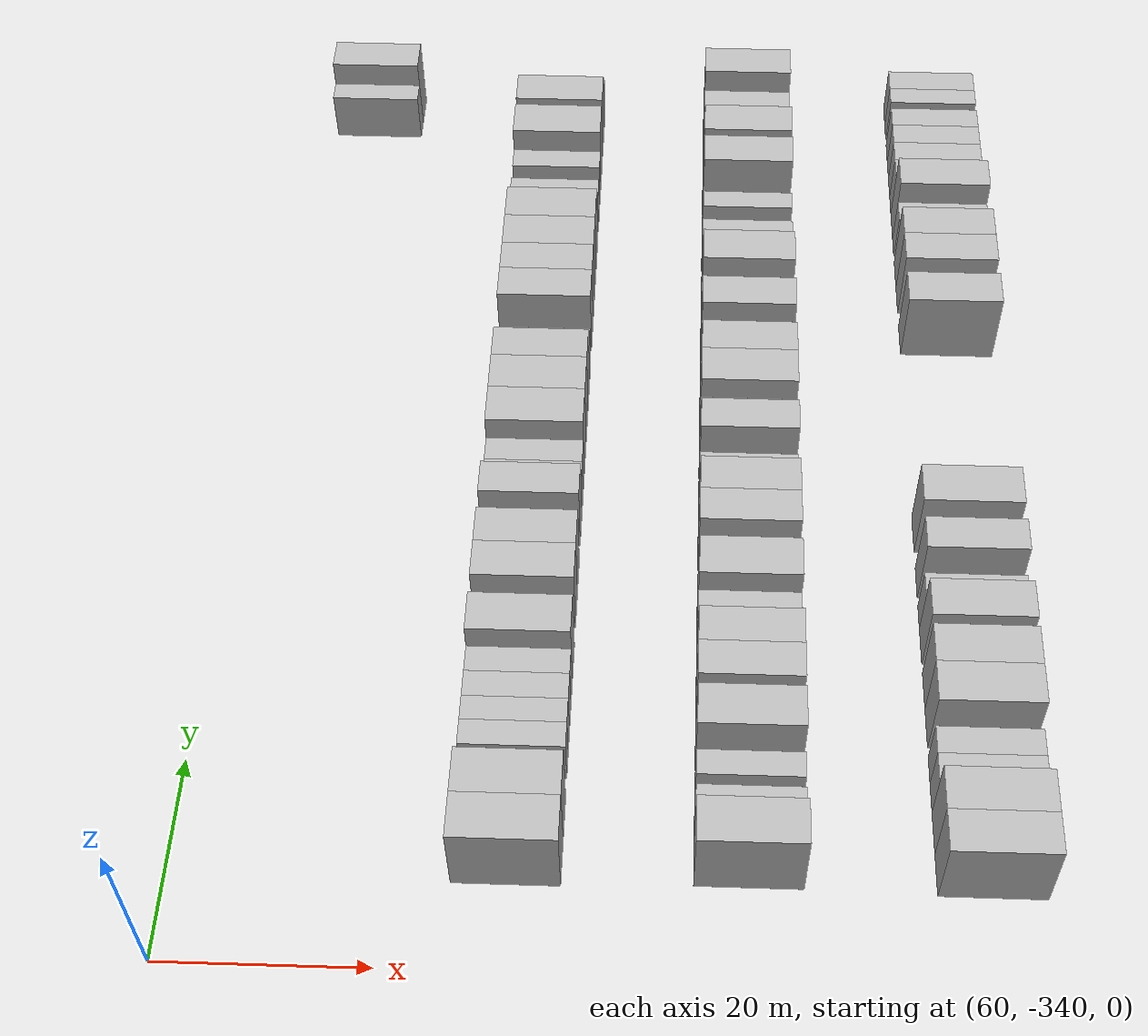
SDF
<sdf version="1.6">
 <world name="default">
  <model name="building_419">
   <static>1</static>
   <pose>69.0000 -233.4032 0 0.000000 0.000000 0.000000</pose>
   <link name="link">
    <pose>0 0 3.00 0 0 0</pose>
    <collision name="collision"><geometry><box><size>10.0000 2.4806 6.0000</size></box></geometry></collision>
    <visual name="visual">
     <cast_shadows>0</cast_shadows>
     <geometry><box><size>10.0000 2.4806 6.0000</size></box></geometry>
     <material>
      <script>
       <uri>model://HANNAS_wall/materials/scripts</uri>
       <uri>model://HANNAS_wall/materials/textures</uri>
       <name>vrc/HANNAS_wall</name>
      </script>
     </material>
    </visual>
   </link>
  </model>
  <model name="building_420">
   <static>1</static>
   <pose>69.0000 -230.1984 0 0.000000 0.000000 0.000000</pose>
   <link name="link">
    <pose>0 0 4.50 0 0 0</pose>
    <collision name="collision"><geometry><box><size>10.0000 3.9290 9.0000</size></box></geometry></collision>
    <visual name="visual">
     <cast_shadows>0</cast_shadows>
     <geometry><box><size>10.0000 3.9290 9.0000</size></box></geometry>
     <material>
      <script>
       <uri>model://HANNAS_wall/materials/scripts</uri>
       <uri>model://HANNAS_wall/materials/textures</uri>
       <name>vrc/HANNAS_wall</name>
      </script>
     </material>
    </visual>
   </link>
  </model>
  <model name="building_581">
   <static>1</static>
   <pose>91.0000 -329.4090 0 0.000000 0.000000 0.000000</pose>
   <link name="link">
    <pose>0 0 4.50 0 0 0</pose>
    <collision name="collision"><geometry><box><size>10.0000 4.4573 9.0000</size></box></geometry></collision>
    <visual name="visual">
     <cast_shadows>0</cast_shadows>
     <geometry><box><size>10.0000 4.4573 9.0000</size></box></geometry>
     <material>
      <script>
       <uri>model://HANNAS_wall/materials/scripts</uri>
       <uri>model://HANNAS_wall/materials/textures</uri>
       <name>vrc/HANNAS_wall</name>
      </script>
     </material>
    </visual>
   </link>
  </model>
  <model name="building_582">
   <static>1</static>
   <pose>91.0000 -324.9564 0 0.000000 0.000000 0.000000</pose>
   <link name="link">
    <pose>0 0 4.50 0 0 0</pose>
    <collision name="collision"><geometry><box><size>10.0000 4.4479 9.0000</size></box></geometry></collision>
    <visual name="visual">
     <cast_shadows>0</cast_shadows>
     <geometry><box><size>10.0000 4.4479 9.0000</size></box></geometry>
     <material>
      <script>
       <uri>model://HANNAS_wall/materials/scripts</uri>
       <uri>model://HANNAS_wall/materials/textures</uri>
       <name>vrc/HANNAS_wall</name>
      </script>
     </material>
    </visual>
   </link>
  </model>
  <model name="building_583">
   <static>1</static>
   <pose>91.0000 -319.4270 0 0.000000 0.000000 0.000000</pose>
   <link name="link">
    <pose>0 0 3.00 0 0 0</pose>
    <collision name="collision"><geometry><box><size>10.0000 2.6109 6.0000</size></box></geometry></collision>
    <visual name="visual">
     <cast_shadows>0</cast_shadows>
     <geometry><box><size>10.0000 2.6109 6.0000</size></box></geometry>
     <material>
      <script>
       <uri>model://HANNAS_wall/materials/scripts</uri>
       <uri>model://HANNAS_wall/materials/textures</uri>
       <name>vrc/HANNAS_wall</name>
      </script>
     </material>
    </visual>
   </link>
  </model>
  <model name="building_584">
   <static>1</static>
   <pose>91.0000 -316.8664 0 0.000000 0.000000 0.000000</pose>
   <link name="link">
    <pose>0 0 3.00 0 0 0</pose>
    <collision name="collision"><geometry><box><size>10.0000 2.5103 6.0000</size></box></geometry></collision>
    <visual name="visual">
     <cast_shadows>0</cast_shadows>
     <geometry><box><size>10.0000 2.5103 6.0000</size></box></geometry>
     <material>
      <script>
       <uri>model://HANNAS_wall/materials/scripts</uri>
       <uri>model://HANNAS_wall/materials/textures</uri>
       <name>vrc/HANNAS_wall</name>
      </script>
     </material>
    </visual>
   </link>
  </model>
  <model name="building_585">
   <static>1</static>
   <pose>91.0000 -314.2574 0 0.000000 0.000000 0.000000</pose>
   <link name="link">
    <pose>0 0 3.00 0 0 0</pose>
    <collision name="collision"><geometry><box><size>10.0000 2.7077 6.0000</size></box></geometry></collision>
    <visual name="visual">
     <cast_shadows>0</cast_shadows>
     <geometry><box><size>10.0000 2.7077 6.0000</size></box></geometry>
     <material>
      <script>
       <uri>model://HANNAS_wall/materials/scripts</uri>
       <uri>model://HANNAS_wall/materials/textures</uri>
       <name>vrc/HANNAS_wall</name>
      </script>
     </material>
    </visual>
   </link>
  </model>
  <model name="building_586">
   <static>1</static>
   <pose>91.0000 -311.5536 0 0.000000 0.000000 0.000000</pose>
   <link name="link">
    <pose>0 0 3.00 0 0 0</pose>
    <collision name="collision"><geometry><box><size>10.0000 2.6998 6.0000</size></box></geometry></collision>
    <visual name="visual">
     <cast_shadows>0</cast_shadows>
     <geometry><box><size>10.0000 2.6998 6.0000</size></box></geometry>
     <material>
      <script>
       <uri>model://HANNAS_wall/materials/scripts</uri>
       <uri>model://HANNAS_wall/materials/textures</uri>
       <name>vrc/HANNAS_wall</name>
      </script>
     </material>
    </visual>
   </link>
  </model>
  <model name="building_587">
   <static>1</static>
   <pose>91.0000 -308.1348 0 0.000000 0.000000 0.000000</pose>
   <link name="link">
    <pose>0 0 4.50 0 0 0</pose>
    <collision name="collision"><geometry><box><size>10.0000 4.1378 9.0000</size></box></geometry></collision>
    <visual name="visual">
     <cast_shadows>0</cast_shadows>
     <geometry><box><size>10.0000 4.1378 9.0000</size></box></geometry>
     <material>
      <script>
       <uri>model://HANNAS_wall/materials/scripts</uri>
       <uri>model://HANNAS_wall/materials/textures</uri>
       <name>vrc/HANNAS_wall</name>
      </script>
     </material>
    </visual>
   </link>
  </model>
  <model name="building_588">
   <static>1</static>
   <pose>91.0000 -302.0686 0 0.000000 0.000000 0.000000</pose>
   <link name="link">
    <pose>0 0 4.50 0 0 0</pose>
    <collision name="collision"><geometry><box><size>10.0000 3.9947 9.0000</size></box></geometry></collision>
    <visual name="visual">
     <cast_shadows>0</cast_shadows>
     <geometry><box><size>10.0000 3.9947 9.0000</size></box></geometry>
     <material>
      <script>
       <uri>model://HANNAS_wall/materials/scripts</uri>
       <uri>model://HANNAS_wall/materials/textures</uri>
       <name>vrc/HANNAS_wall</name>
      </script>
     </material>
    </visual>
   </link>
  </model>
  <model name="building_589">
   <static>1</static>
   <pose>91.0000 -298.0919 0 0.000000 0.000000 0.000000</pose>
   <link name="link">
    <pose>0 0 4.50 0 0 0</pose>
    <collision name="collision"><geometry><box><size>10.0000 3.9587 9.0000</size></box></geometry></collision>
    <visual name="visual">
     <cast_shadows>0</cast_shadows>
     <geometry><box><size>10.0000 3.9587 9.0000</size></box></geometry>
     <material>
      <script>
       <uri>model://HANNAS_wall/materials/scripts</uri>
       <uri>model://HANNAS_wall/materials/textures</uri>
       <name>vrc/HANNAS_wall</name>
      </script>
     </material>
    </visual>
   </link>
  </model>
  <model name="building_590">
   <static>1</static>
   <pose>91.0000 -292.2782 0 0.000000 0.000000 0.000000</pose>
   <link name="link">
    <pose>0 0 4.50 0 0 0</pose>
    <collision name="collision"><geometry><box><size>10.0000 3.6687 9.0000</size></box></geometry></collision>
    <visual name="visual">
     <cast_shadows>0</cast_shadows>
     <geometry><box><size>10.0000 3.6687 9.0000</size></box></geometry>
     <material>
      <script>
       <uri>model://HANNAS_wall/materials/scripts</uri>
       <uri>model://HANNAS_wall/materials/textures</uri>
       <name>vrc/HANNAS_wall</name>
      </script>
     </material>
    </visual>
   </link>
  </model>
  <model name="building_591">
   <static>1</static>
   <pose>91.0000 -289.1451 0 0.000000 0.000000 0.000000</pose>
   <link name="link">
    <pose>0 0 3.00 0 0 0</pose>
    <collision name="collision"><geometry><box><size>10.0000 2.5974 6.0000</size></box></geometry></collision>
    <visual name="visual">
     <cast_shadows>0</cast_shadows>
     <geometry><box><size>10.0000 2.5974 6.0000</size></box></geometry>
     <material>
      <script>
       <uri>model://HANNAS_wall/materials/scripts</uri>
       <uri>model://HANNAS_wall/materials/textures</uri>
       <name>vrc/HANNAS_wall</name>
      </script>
     </material>
    </visual>
   </link>
  </model>
  <model name="building_592">
   <static>1</static>
   <pose>91.0000 -286.4779 0 0.000000 0.000000 0.000000</pose>
   <link name="link">
    <pose>0 0 3.00 0 0 0</pose>
    <collision name="collision"><geometry><box><size>10.0000 2.7371 6.0000</size></box></geometry></collision>
    <visual name="visual">
     <cast_shadows>0</cast_shadows>
     <geometry><box><size>10.0000 2.7371 6.0000</size></box></geometry>
     <material>
      <script>
       <uri>model://HANNAS_wall/materials/scripts</uri>
       <uri>model://HANNAS_wall/materials/textures</uri>
       <name>vrc/HANNAS_wall</name>
      </script>
     </material>
    </visual>
   </link>
  </model>
  <model name="building_593">
   <static>1</static>
   <pose>91.0000 -282.9192 0 0.000000 0.000000 0.000000</pose>
   <link name="link">
    <pose>0 0 4.50 0 0 0</pose>
    <collision name="collision"><geometry><box><size>10.0000 4.3802 9.0000</size></box></geometry></collision>
    <visual name="visual">
     <cast_shadows>0</cast_shadows>
     <geometry><box><size>10.0000 4.3802 9.0000</size></box></geometry>
     <material>
      <script>
       <uri>model://HANNAS_wall/materials/scripts</uri>
       <uri>model://HANNAS_wall/materials/textures</uri>
       <name>vrc/HANNAS_wall</name>
      </script>
     </material>
    </visual>
   </link>
  </model>
  <model name="building_594">
   <static>1</static>
   <pose>91.0000 -278.5781 0 0.000000 0.000000 0.000000</pose>
   <link name="link">
    <pose>0 0 4.50 0 0 0</pose>
    <collision name="collision"><geometry><box><size>10.0000 4.3021 9.0000</size></box></geometry></collision>
    <visual name="visual">
     <cast_shadows>0</cast_shadows>
     <geometry><box><size>10.0000 4.3021 9.0000</size></box></geometry>
     <material>
      <script>
       <uri>model://HANNAS_wall/materials/scripts</uri>
       <uri>model://HANNAS_wall/materials/textures</uri>
       <name>vrc/HANNAS_wall</name>
      </script>
     </material>
    </visual>
   </link>
  </model>
  <model name="building_595">
   <static>1</static>
   <pose>91.0000 -274.5388 0 0.000000 0.000000 0.000000</pose>
   <link name="link">
    <pose>0 0 4.50 0 0 0</pose>
    <collision name="collision"><geometry><box><size>10.0000 3.7765 9.0000</size></box></geometry></collision>
    <visual name="visual">
     <cast_shadows>0</cast_shadows>
     <geometry><box><size>10.0000 3.7765 9.0000</size></box></geometry>
     <material>
      <script>
       <uri>model://HANNAS_wall/materials/scripts</uri>
       <uri>model://HANNAS_wall/materials/textures</uri>
       <name>vrc/HANNAS_wall</name>
      </script>
     </material>
    </visual>
   </link>
  </model>
  <model name="building_596">
   <static>1</static>
   <pose>91.0000 -271.3082 0 0.000000 0.000000 0.000000</pose>
   <link name="link">
    <pose>0 0 3.00 0 0 0</pose>
    <collision name="collision"><geometry><box><size>10.0000 2.6848 6.0000</size></box></geometry></collision>
    <visual name="visual">
     <cast_shadows>0</cast_shadows>
     <geometry><box><size>10.0000 2.6848 6.0000</size></box></geometry>
     <material>
      <script>
       <uri>model://HANNAS_wall/materials/scripts</uri>
       <uri>model://HANNAS_wall/materials/textures</uri>
       <name>vrc/HANNAS_wall</name>
      </script>
     </material>
    </visual>
   </link>
  </model>
  <model name="building_597">
   <static>1</static>
   <pose>91.0000 -266.0117 0 0.000000 0.000000 0.000000</pose>
   <link name="link">
    <pose>0 0 4.50 0 0 0</pose>
    <collision name="collision"><geometry><box><size>10.0000 3.9081 9.0000</size></box></geometry></collision>
    <visual name="visual">
     <cast_shadows>0</cast_shadows>
     <geometry><box><size>10.0000 3.9081 9.0000</size></box></geometry>
     <material>
      <script>
       <uri>model://HANNAS_wall/materials/scripts</uri>
       <uri>model://HANNAS_wall/materials/textures</uri>
       <name>vrc/HANNAS_wall</name>
      </script>
     </material>
    </visual>
   </link>
  </model>
  <model name="building_598">
   <static>1</static>
   <pose>91.0000 -262.1861 0 0.000000 0.000000 0.000000</pose>
   <link name="link">
    <pose>0 0 4.50 0 0 0</pose>
    <collision name="collision"><geometry><box><size>10.0000 3.7432 9.0000</size></box></geometry></collision>
    <visual name="visual">
     <cast_shadows>0</cast_shadows>
     <geometry><box><size>10.0000 3.7432 9.0000</size></box></geometry>
     <material>
      <script>
       <uri>model://HANNAS_wall/materials/scripts</uri>
       <uri>model://HANNAS_wall/materials/textures</uri>
       <name>vrc/HANNAS_wall</name>
      </script>
     </material>
    </visual>
   </link>
  </model>
  <model name="building_599">
   <static>1</static>
   <pose>91.0000 -258.2255 0 0.000000 0.000000 0.000000</pose>
   <link name="link">
    <pose>0 0 4.50 0 0 0</pose>
    <collision name="collision"><geometry><box><size>10.0000 4.1779 9.0000</size></box></geometry></collision>
    <visual name="visual">
     <cast_shadows>0</cast_shadows>
     <geometry><box><size>10.0000 4.1779 9.0000</size></box></geometry>
     <material>
      <script>
       <uri>model://HANNAS_wall/materials/scripts</uri>
       <uri>model://HANNAS_wall/materials/textures</uri>
       <name>vrc/HANNAS_wall</name>
      </script>
     </material>
    </visual>
   </link>
  </model>
  <model name="building_600">
   <static>1</static>
   <pose>91.0000 -253.9628 0 0.000000 0.000000 0.000000</pose>
   <link name="link">
    <pose>0 0 4.50 0 0 0</pose>
    <collision name="collision"><geometry><box><size>10.0000 4.3476 9.0000</size></box></geometry></collision>
    <visual name="visual">
     <cast_shadows>0</cast_shadows>
     <geometry><box><size>10.0000 4.3476 9.0000</size></box></geometry>
     <material>
      <script>
       <uri>model://HANNAS_wall/materials/scripts</uri>
       <uri>model://HANNAS_wall/materials/textures</uri>
       <name>vrc/HANNAS_wall</name>
      </script>
     </material>
    </visual>
   </link>
  </model>
  <model name="building_601">
   <static>1</static>
   <pose>91.0000 -248.5597 0 0.000000 0.000000 0.000000</pose>
   <link name="link">
    <pose>0 0 3.00 0 0 0</pose>
    <collision name="collision"><geometry><box><size>10.0000 2.4586 6.0000</size></box></geometry></collision>
    <visual name="visual">
     <cast_shadows>0</cast_shadows>
     <geometry><box><size>10.0000 2.4586 6.0000</size></box></geometry>
     <material>
      <script>
       <uri>model://HANNAS_wall/materials/scripts</uri>
       <uri>model://HANNAS_wall/materials/textures</uri>
       <name>vrc/HANNAS_wall</name>
      </script>
     </material>
    </visual>
   </link>
  </model>
  <model name="building_602">
   <static>1</static>
   <pose>91.0000 -244.0178 0 0.000000 0.000000 0.000000</pose>
   <link name="link">
    <pose>0 0 3.00 0 0 0</pose>
    <collision name="collision"><geometry><box><size>10.0000 2.6252 6.0000</size></box></geometry></collision>
    <visual name="visual">
     <cast_shadows>0</cast_shadows>
     <geometry><box><size>10.0000 2.6252 6.0000</size></box></geometry>
     <material>
      <script>
       <uri>model://HANNAS_wall/materials/scripts</uri>
       <uri>model://HANNAS_wall/materials/textures</uri>
       <name>vrc/HANNAS_wall</name>
      </script>
     </material>
    </visual>
   </link>
  </model>
  <model name="building_603">
   <static>1</static>
   <pose>91.0000 -240.4874 0 0.000000 0.000000 0.000000</pose>
   <link name="link">
    <pose>0 0 4.50 0 0 0</pose>
    <collision name="collision"><geometry><box><size>10.0000 4.4356 9.0000</size></box></geometry></collision>
    <visual name="visual">
     <cast_shadows>0</cast_shadows>
     <geometry><box><size>10.0000 4.4356 9.0000</size></box></geometry>
     <material>
      <script>
       <uri>model://HANNAS_wall/materials/scripts</uri>
       <uri>model://HANNAS_wall/materials/textures</uri>
       <name>vrc/HANNAS_wall</name>
      </script>
     </material>
    </visual>
   </link>
  </model>
  <model name="building_604">
   <static>1</static>
   <pose>91.0000 -235.2563 0 0.000000 0.000000 0.000000</pose>
   <link name="link">
    <pose>0 0 4.50 0 0 0</pose>
    <collision name="collision"><geometry><box><size>10.0000 4.0266 9.0000</size></box></geometry></collision>
    <visual name="visual">
     <cast_shadows>0</cast_shadows>
     <geometry><box><size>10.0000 4.0266 9.0000</size></box></geometry>
     <material>
      <script>
       <uri>model://HANNAS_wall/materials/scripts</uri>
       <uri>model://HANNAS_wall/materials/textures</uri>
       <name>vrc/HANNAS_wall</name>
      </script>
     </material>
    </visual>
   </link>
  </model>
  <model name="building_605">
   <static>1</static>
   <pose>91.0000 -231.8658 0 0.000000 0.000000 0.000000</pose>
   <link name="link">
    <pose>0 0 3.00 0 0 0</pose>
    <collision name="collision"><geometry><box><size>10.0000 2.7545 6.0000</size></box></geometry></collision>
    <visual name="visual">
     <cast_shadows>0</cast_shadows>
     <geometry><box><size>10.0000 2.7545 6.0000</size></box></geometry>
     <material>
      <script>
       <uri>model://HANNAS_wall/materials/scripts</uri>
       <uri>model://HANNAS_wall/materials/textures</uri>
       <name>vrc/HANNAS_wall</name>
      </script>
     </material>
    </visual>
   </link>
  </model>
  <model name="building_756">
   <static>1</static>
   <pose>113.0000 -329.0048 0 0.000000 0.000000 0.000000</pose>
   <link name="link">
    <pose>0 0 4.50 0 0 0</pose>
    <collision name="collision"><geometry><box><size>10.0000 4.4335 9.0000</size></box></geometry></collision>
    <visual name="visual">
     <cast_shadows>0</cast_shadows>
     <geometry><box><size>10.0000 4.4335 9.0000</size></box></geometry>
     <material>
      <script>
       <uri>model://HANNAS_wall/materials/scripts</uri>
       <uri>model://HANNAS_wall/materials/textures</uri>
       <name>vrc/HANNAS_wall</name>
      </script>
     </material>
    </visual>
   </link>
  </model>
  <model name="building_757">
   <static>1</static>
   <pose>113.0000 -325.4299 0 0.000000 0.000000 0.000000</pose>
   <link name="link">
    <pose>0 0 3.00 0 0 0</pose>
    <collision name="collision"><geometry><box><size>10.0000 2.7163 6.0000</size></box></geometry></collision>
    <visual name="visual">
     <cast_shadows>0</cast_shadows>
     <geometry><box><size>10.0000 2.7163 6.0000</size></box></geometry>
     <material>
      <script>
       <uri>model://HANNAS_wall/materials/scripts</uri>
       <uri>model://HANNAS_wall/materials/textures</uri>
       <name>vrc/HANNAS_wall</name>
      </script>
     </material>
    </visual>
   </link>
  </model>
  <model name="building_758">
   <static>1</static>
   <pose>113.0000 -321.7918 0 0.000000 0.000000 0.000000</pose>
   <link name="link">
    <pose>0 0 3.00 0 0 0</pose>
    <collision name="collision"><geometry><box><size>10.0000 2.5598 6.0000</size></box></geometry></collision>
    <visual name="visual">
     <cast_shadows>0</cast_shadows>
     <geometry><box><size>10.0000 2.5598 6.0000</size></box></geometry>
     <material>
      <script>
       <uri>model://HANNAS_wall/materials/scripts</uri>
       <uri>model://HANNAS_wall/materials/textures</uri>
       <name>vrc/HANNAS_wall</name>
      </script>
     </material>
    </visual>
   </link>
  </model>
  <model name="building_759">
   <static>1</static>
   <pose>113.0000 -317.3996 0 0.000000 0.000000 0.000000</pose>
   <link name="link">
    <pose>0 0 4.50 0 0 0</pose>
    <collision name="collision"><geometry><box><size>10.0000 4.2247 9.0000</size></box></geometry></collision>
    <visual name="visual">
     <cast_shadows>0</cast_shadows>
     <geometry><box><size>10.0000 4.2247 9.0000</size></box></geometry>
     <material>
      <script>
       <uri>model://HANNAS_wall/materials/scripts</uri>
       <uri>model://HANNAS_wall/materials/textures</uri>
       <name>vrc/HANNAS_wall</name>
      </script>
     </material>
    </visual>
   </link>
  </model>
  <model name="building_760">
   <static>1</static>
   <pose>113.0000 -312.4563 0 0.000000 0.000000 0.000000</pose>
   <link name="link">
    <pose>0 0 4.50 0 0 0</pose>
    <collision name="collision"><geometry><box><size>10.0000 3.6619 9.0000</size></box></geometry></collision>
    <visual name="visual">
     <cast_shadows>0</cast_shadows>
     <geometry><box><size>10.0000 3.6619 9.0000</size></box></geometry>
     <material>
      <script>
       <uri>model://HANNAS_wall/materials/scripts</uri>
       <uri>model://HANNAS_wall/materials/textures</uri>
       <name>vrc/HANNAS_wall</name>
      </script>
     </material>
    </visual>
   </link>
  </model>
  <model name="building_761">
   <static>1</static>
   <pose>113.0000 -308.7473 0 0.000000 0.000000 0.000000</pose>
   <link name="link">
    <pose>0 0 4.50 0 0 0</pose>
    <collision name="collision"><geometry><box><size>10.0000 3.7560 9.0000</size></box></geometry></collision>
    <visual name="visual">
     <cast_shadows>0</cast_shadows>
     <geometry><box><size>10.0000 3.7560 9.0000</size></box></geometry>
     <material>
      <script>
       <uri>model://HANNAS_wall/materials/scripts</uri>
       <uri>model://HANNAS_wall/materials/textures</uri>
       <name>vrc/HANNAS_wall</name>
      </script>
     </material>
    </visual>
   </link>
  </model>
  <model name="building_762">
   <static>1</static>
   <pose>113.0000 -304.4590 0 0.000000 0.000000 0.000000</pose>
   <link name="link">
    <pose>0 0 3.00 0 0 0</pose>
    <collision name="collision"><geometry><box><size>10.0000 2.8205 6.0000</size></box></geometry></collision>
    <visual name="visual">
     <cast_shadows>0</cast_shadows>
     <geometry><box><size>10.0000 2.8205 6.0000</size></box></geometry>
     <material>
      <script>
       <uri>model://HANNAS_wall/materials/scripts</uri>
       <uri>model://HANNAS_wall/materials/textures</uri>
       <name>vrc/HANNAS_wall</name>
      </script>
     </material>
    </visual>
   </link>
  </model>
  <model name="building_763">
   <static>1</static>
   <pose>113.0000 -300.8861 0 0.000000 0.000000 0.000000</pose>
   <link name="link">
    <pose>0 0 4.50 0 0 0</pose>
    <collision name="collision"><geometry><box><size>10.0000 4.3253 9.0000</size></box></geometry></collision>
    <visual name="visual">
     <cast_shadows>0</cast_shadows>
     <geometry><box><size>10.0000 4.3253 9.0000</size></box></geometry>
     <material>
      <script>
       <uri>model://HANNAS_wall/materials/scripts</uri>
       <uri>model://HANNAS_wall/materials/textures</uri>
       <name>vrc/HANNAS_wall</name>
      </script>
     </material>
    </visual>
   </link>
  </model>
  <model name="building_764">
   <static>1</static>
   <pose>113.0000 -294.8398 0 0.000000 0.000000 0.000000</pose>
   <link name="link">
    <pose>0 0 4.50 0 0 0</pose>
    <collision name="collision"><geometry><box><size>10.0000 3.7673 9.0000</size></box></geometry></collision>
    <visual name="visual">
     <cast_shadows>0</cast_shadows>
     <geometry><box><size>10.0000 3.7673 9.0000</size></box></geometry>
     <material>
      <script>
       <uri>model://HANNAS_wall/materials/scripts</uri>
       <uri>model://HANNAS_wall/materials/textures</uri>
       <name>vrc/HANNAS_wall</name>
      </script>
     </material>
    </visual>
   </link>
  </model>
  <model name="building_765">
   <static>1</static>
   <pose>113.0000 -290.9815 0 0.000000 0.000000 0.000000</pose>
   <link name="link">
    <pose>0 0 4.50 0 0 0</pose>
    <collision name="collision"><geometry><box><size>10.0000 3.9494 9.0000</size></box></geometry></collision>
    <visual name="visual">
     <cast_shadows>0</cast_shadows>
     <geometry><box><size>10.0000 3.9494 9.0000</size></box></geometry>
     <material>
      <script>
       <uri>model://HANNAS_wall/materials/scripts</uri>
       <uri>model://HANNAS_wall/materials/textures</uri>
       <name>vrc/HANNAS_wall</name>
      </script>
     </material>
    </visual>
   </link>
  </model>
  <model name="building_766">
   <static>1</static>
   <pose>113.0000 -287.5988 0 0.000000 0.000000 0.000000</pose>
   <link name="link">
    <pose>0 0 3.00 0 0 0</pose>
    <collision name="collision"><geometry><box><size>10.0000 2.8161 6.0000</size></box></geometry></collision>
    <visual name="visual">
     <cast_shadows>0</cast_shadows>
     <geometry><box><size>10.0000 2.8161 6.0000</size></box></geometry>
     <material>
      <script>
       <uri>model://HANNAS_wall/materials/scripts</uri>
       <uri>model://HANNAS_wall/materials/textures</uri>
       <name>vrc/HANNAS_wall</name>
      </script>
     </material>
    </visual>
   </link>
  </model>
  <model name="building_767">
   <static>1</static>
   <pose>113.0000 -283.3500 0 0.000000 0.000000 0.000000</pose>
   <link name="link">
    <pose>0 0 4.50 0 0 0</pose>
    <collision name="collision"><geometry><box><size>10.0000 3.6815 9.0000</size></box></geometry></collision>
    <visual name="visual">
     <cast_shadows>0</cast_shadows>
     <geometry><box><size>10.0000 3.6815 9.0000</size></box></geometry>
     <material>
      <script>
       <uri>model://HANNAS_wall/materials/scripts</uri>
       <uri>model://HANNAS_wall/materials/textures</uri>
       <name>vrc/HANNAS_wall</name>
      </script>
     </material>
    </visual>
   </link>
  </model>
  <model name="building_768">
   <static>1</static>
   <pose>113.0000 -280.2529 0 0.000000 0.000000 0.000000</pose>
   <link name="link">
    <pose>0 0 3.00 0 0 0</pose>
    <collision name="collision"><geometry><box><size>10.0000 2.5125 6.0000</size></box></geometry></collision>
    <visual name="visual">
     <cast_shadows>0</cast_shadows>
     <geometry><box><size>10.0000 2.5125 6.0000</size></box></geometry>
     <material>
      <script>
       <uri>model://HANNAS_wall/materials/scripts</uri>
       <uri>model://HANNAS_wall/materials/textures</uri>
       <name>vrc/HANNAS_wall</name>
      </script>
     </material>
    </visual>
   </link>
  </model>
  <model name="building_769">
   <static>1</static>
   <pose>113.0000 -276.8586 0 0.000000 0.000000 0.000000</pose>
   <link name="link">
    <pose>0 0 4.50 0 0 0</pose>
    <collision name="collision"><geometry><box><size>10.0000 4.2762 9.0000</size></box></geometry></collision>
    <visual name="visual">
     <cast_shadows>0</cast_shadows>
     <geometry><box><size>10.0000 4.2762 9.0000</size></box></geometry>
     <material>
      <script>
       <uri>model://HANNAS_wall/materials/scripts</uri>
       <uri>model://HANNAS_wall/materials/textures</uri>
       <name>vrc/HANNAS_wall</name>
      </script>
     </material>
    </visual>
   </link>
  </model>
  <model name="building_770">
   <static>1</static>
   <pose>113.0000 -272.8024 0 0.000000 0.000000 0.000000</pose>
   <link name="link">
    <pose>0 0 4.50 0 0 0</pose>
    <collision name="collision"><geometry><box><size>10.0000 3.8362 9.0000</size></box></geometry></collision>
    <visual name="visual">
     <cast_shadows>0</cast_shadows>
     <geometry><box><size>10.0000 3.8362 9.0000</size></box></geometry>
     <material>
      <script>
       <uri>model://HANNAS_wall/materials/scripts</uri>
       <uri>model://HANNAS_wall/materials/textures</uri>
       <name>vrc/HANNAS_wall</name>
      </script>
     </material>
    </visual>
   </link>
  </model>
  <model name="building_771">
   <static>1</static>
   <pose>113.0000 -269.6296 0 0.000000 0.000000 0.000000</pose>
   <link name="link">
    <pose>0 0 3.00 0 0 0</pose>
    <collision name="collision"><geometry><box><size>10.0000 2.5095 6.0000</size></box></geometry></collision>
    <visual name="visual">
     <cast_shadows>0</cast_shadows>
     <geometry><box><size>10.0000 2.5095 6.0000</size></box></geometry>
     <material>
      <script>
       <uri>model://HANNAS_wall/materials/scripts</uri>
       <uri>model://HANNAS_wall/materials/textures</uri>
       <name>vrc/HANNAS_wall</name>
      </script>
     </material>
    </visual>
   </link>
  </model>
  <model name="building_772">
   <static>1</static>
   <pose>113.0000 -266.4577 0 0.000000 0.000000 0.000000</pose>
   <link name="link">
    <pose>0 0 4.50 0 0 0</pose>
    <collision name="collision"><geometry><box><size>10.0000 3.8342 9.0000</size></box></geometry></collision>
    <visual name="visual">
     <cast_shadows>0</cast_shadows>
     <geometry><box><size>10.0000 3.8342 9.0000</size></box></geometry>
     <material>
      <script>
       <uri>model://HANNAS_wall/materials/scripts</uri>
       <uri>model://HANNAS_wall/materials/textures</uri>
       <name>vrc/HANNAS_wall</name>
      </script>
     </material>
    </visual>
   </link>
  </model>
  <model name="building_773">
   <static>1</static>
   <pose>113.0000 -263.2007 0 0.000000 0.000000 0.000000</pose>
   <link name="link">
    <pose>0 0 3.00 0 0 0</pose>
    <collision name="collision"><geometry><box><size>10.0000 2.6799 6.0000</size></box></geometry></collision>
    <visual name="visual">
     <cast_shadows>0</cast_shadows>
     <geometry><box><size>10.0000 2.6799 6.0000</size></box></geometry>
     <material>
      <script>
       <uri>model://HANNAS_wall/materials/scripts</uri>
       <uri>model://HANNAS_wall/materials/textures</uri>
       <name>vrc/HANNAS_wall</name>
      </script>
     </material>
    </visual>
   </link>
  </model>
  <model name="building_774">
   <static>1</static>
   <pose>113.0000 -259.7472 0 0.000000 0.000000 0.000000</pose>
   <link name="link">
    <pose>0 0 4.50 0 0 0</pose>
    <collision name="collision"><geometry><box><size>10.0000 4.2271 9.0000</size></box></geometry></collision>
    <visual name="visual">
     <cast_shadows>0</cast_shadows>
     <geometry><box><size>10.0000 4.2271 9.0000</size></box></geometry>
     <material>
      <script>
       <uri>model://HANNAS_wall/materials/scripts</uri>
       <uri>model://HANNAS_wall/materials/textures</uri>
       <name>vrc/HANNAS_wall</name>
      </script>
     </material>
    </visual>
   </link>
  </model>
  <model name="building_775">
   <static>1</static>
   <pose>113.0000 -254.3745 0 0.000000 0.000000 0.000000</pose>
   <link name="link">
    <pose>0 0 3.00 0 0 0</pose>
    <collision name="collision"><geometry><box><size>10.0000 2.5182 6.0000</size></box></geometry></collision>
    <visual name="visual">
     <cast_shadows>0</cast_shadows>
     <geometry><box><size>10.0000 2.5182 6.0000</size></box></geometry>
     <material>
      <script>
       <uri>model://HANNAS_wall/materials/scripts</uri>
       <uri>model://HANNAS_wall/materials/textures</uri>
       <name>vrc/HANNAS_wall</name>
      </script>
     </material>
    </visual>
   </link>
  </model>
  <model name="building_776">
   <static>1</static>
   <pose>113.0000 -249.9071 0 0.000000 0.000000 0.000000</pose>
   <link name="link">
    <pose>0 0 3.00 0 0 0</pose>
    <collision name="collision"><geometry><box><size>10.0000 2.4166 6.0000</size></box></geometry></collision>
    <visual name="visual">
     <cast_shadows>0</cast_shadows>
     <geometry><box><size>10.0000 2.4166 6.0000</size></box></geometry>
     <material>
      <script>
       <uri>model://HANNAS_wall/materials/scripts</uri>
       <uri>model://HANNAS_wall/materials/textures</uri>
       <name>vrc/HANNAS_wall</name>
      </script>
     </material>
    </visual>
   </link>
  </model>
  <model name="building_777">
   <static>1</static>
   <pose>113.0000 -244.6992 0 0.000000 0.000000 0.000000</pose>
   <link name="link">
    <pose>0 0 4.50 0 0 0</pose>
    <collision name="collision"><geometry><box><size>10.0000 3.9992 9.0000</size></box></geometry></collision>
    <visual name="visual">
     <cast_shadows>0</cast_shadows>
     <geometry><box><size>10.0000 3.9992 9.0000</size></box></geometry>
     <material>
      <script>
       <uri>model://HANNAS_wall/materials/scripts</uri>
       <uri>model://HANNAS_wall/materials/textures</uri>
       <name>vrc/HANNAS_wall</name>
      </script>
     </material>
    </visual>
   </link>
  </model>
  <model name="building_778">
   <static>1</static>
   <pose>113.0000 -239.6670 0 0.000000 0.000000 0.000000</pose>
   <link name="link">
    <pose>0 0 4.50 0 0 0</pose>
    <collision name="collision"><geometry><box><size>10.0000 4.0653 9.0000</size></box></geometry></collision>
    <visual name="visual">
     <cast_shadows>0</cast_shadows>
     <geometry><box><size>10.0000 4.0653 9.0000</size></box></geometry>
     <material>
      <script>
       <uri>model://HANNAS_wall/materials/scripts</uri>
       <uri>model://HANNAS_wall/materials/textures</uri>
       <name>vrc/HANNAS_wall</name>
      </script>
     </material>
    </visual>
   </link>
  </model>
  <model name="building_779">
   <static>1</static>
   <pose>113.0000 -236.1651 0 0.000000 0.000000 0.000000</pose>
   <link name="link">
    <pose>0 0 3.00 0 0 0</pose>
    <collision name="collision"><geometry><box><size>10.0000 2.9384 6.0000</size></box></geometry></collision>
    <visual name="visual">
     <cast_shadows>0</cast_shadows>
     <geometry><box><size>10.0000 2.9384 6.0000</size></box></geometry>
     <material>
      <script>
       <uri>model://HANNAS_wall/materials/scripts</uri>
       <uri>model://HANNAS_wall/materials/textures</uri>
       <name>vrc/HANNAS_wall</name>
      </script>
     </material>
    </visual>
   </link>
  </model>
  <model name="building_780">
   <static>1</static>
   <pose>113.0000 -233.2675 0 0.000000 0.000000 0.000000</pose>
   <link name="link">
    <pose>0 0 3.00 0 0 0</pose>
    <collision name="collision"><geometry><box><size>10.0000 2.8569 6.0000</size></box></geometry></collision>
    <visual name="visual">
     <cast_shadows>0</cast_shadows>
     <geometry><box><size>10.0000 2.8569 6.0000</size></box></geometry>
     <material>
      <script>
       <uri>model://HANNAS_wall/materials/scripts</uri>
       <uri>model://HANNAS_wall/materials/textures</uri>
       <name>vrc/HANNAS_wall</name>
      </script>
     </material>
    </visual>
   </link>
  </model>
  <model name="building_781">
   <static>1</static>
   <pose>113.0000 -229.8012 0 0.000000 0.000000 0.000000</pose>
   <link name="link">
    <pose>0 0 4.50 0 0 0</pose>
    <collision name="collision"><geometry><box><size>10.0000 4.0758 9.0000</size></box></geometry></collision>
    <visual name="visual">
     <cast_shadows>0</cast_shadows>
     <geometry><box><size>10.0000 4.0758 9.0000</size></box></geometry>
     <material>
      <script>
       <uri>model://HANNAS_wall/materials/scripts</uri>
       <uri>model://HANNAS_wall/materials/textures</uri>
       <name>vrc/HANNAS_wall</name>
      </script>
     </material>
    </visual>
   </link>
  </model>
  <model name="building_944">
   <static>1</static>
   <pose>135.0000 -329.4258 0 0.000000 0.000000 0.000000</pose>
   <link name="link">
    <pose>0 0 4.50 0 0 0</pose>
    <collision name="collision"><geometry><box><size>10.0000 4.1108 9.0000</size></box></geometry></collision>
    <visual name="visual">
     <cast_shadows>0</cast_shadows>
     <geometry><box><size>10.0000 4.1108 9.0000</size></box></geometry>
     <material>
      <script>
       <uri>model://HANNAS_wall/materials/scripts</uri>
       <uri>model://HANNAS_wall/materials/textures</uri>
       <name>vrc/HANNAS_wall</name>
      </script>
     </material>
    </visual>
   </link>
  </model>
  <model name="building_945">
   <static>1</static>
   <pose>135.0000 -325.2473 0 0.000000 0.000000 0.000000</pose>
   <link name="link">
    <pose>0 0 4.50 0 0 0</pose>
    <collision name="collision"><geometry><box><size>10.0000 4.2462 9.0000</size></box></geometry></collision>
    <visual name="visual">
     <cast_shadows>0</cast_shadows>
     <geometry><box><size>10.0000 4.2462 9.0000</size></box></geometry>
     <material>
      <script>
       <uri>model://HANNAS_wall/materials/scripts</uri>
       <uri>model://HANNAS_wall/materials/textures</uri>
       <name>vrc/HANNAS_wall</name>
      </script>
     </material>
    </visual>
   </link>
  </model>
  <model name="building_946">
   <static>1</static>
   <pose>135.0000 -321.6412 0 0.000000 0.000000 0.000000</pose>
   <link name="link">
    <pose>0 0 3.00 0 0 0</pose>
    <collision name="collision"><geometry><box><size>10.0000 2.9660 6.0000</size></box></geometry></collision>
    <visual name="visual">
     <cast_shadows>0</cast_shadows>
     <geometry><box><size>10.0000 2.9660 6.0000</size></box></geometry>
     <material>
      <script>
       <uri>model://HANNAS_wall/materials/scripts</uri>
       <uri>model://HANNAS_wall/materials/textures</uri>
       <name>vrc/HANNAS_wall</name>
      </script>
     </material>
    </visual>
   </link>
  </model>
  <model name="building_947">
   <static>1</static>
   <pose>135.0000 -318.7611 0 0.000000 0.000000 0.000000</pose>
   <link name="link">
    <pose>0 0 3.00 0 0 0</pose>
    <collision name="collision"><geometry><box><size>10.0000 2.7944 6.0000</size></box></geometry></collision>
    <visual name="visual">
     <cast_shadows>0</cast_shadows>
     <geometry><box><size>10.0000 2.7944 6.0000</size></box></geometry>
     <material>
      <script>
       <uri>model://HANNAS_wall/materials/scripts</uri>
       <uri>model://HANNAS_wall/materials/textures</uri>
       <name>vrc/HANNAS_wall</name>
      </script>
     </material>
    </visual>
   </link>
  </model>
  <model name="building_948">
   <static>1</static>
   <pose>135.0000 -314.2631 0 0.000000 0.000000 0.000000</pose>
   <link name="link">
    <pose>0 0 4.50 0 0 0</pose>
    <collision name="collision"><geometry><box><size>10.0000 4.2016 9.0000</size></box></geometry></collision>
    <visual name="visual">
     <cast_shadows>0</cast_shadows>
     <geometry><box><size>10.0000 4.2016 9.0000</size></box></geometry>
     <material>
      <script>
       <uri>model://HANNAS_wall/materials/scripts</uri>
       <uri>model://HANNAS_wall/materials/textures</uri>
       <name>vrc/HANNAS_wall</name>
      </script>
     </material>
    </visual>
   </link>
  </model>
  <model name="building_949">
   <static>1</static>
   <pose>135.0000 -310.1215 0 0.000000 0.000000 0.000000</pose>
   <link name="link">
    <pose>0 0 4.50 0 0 0</pose>
    <collision name="collision"><geometry><box><size>10.0000 4.0816 9.0000</size></box></geometry></collision>
    <visual name="visual">
     <cast_shadows>0</cast_shadows>
     <geometry><box><size>10.0000 4.0816 9.0000</size></box></geometry>
     <material>
      <script>
       <uri>model://HANNAS_wall/materials/scripts</uri>
       <uri>model://HANNAS_wall/materials/textures</uri>
       <name>vrc/HANNAS_wall</name>
      </script>
     </material>
    </visual>
   </link>
  </model>
  <model name="building_950">
   <static>1</static>
   <pose>135.0000 -305.0354 0 0.000000 0.000000 0.000000</pose>
   <link name="link">
    <pose>0 0 4.50 0 0 0</pose>
    <collision name="collision"><geometry><box><size>10.0000 4.0907 9.0000</size></box></geometry></collision>
    <visual name="visual">
     <cast_shadows>0</cast_shadows>
     <geometry><box><size>10.0000 4.0907 9.0000</size></box></geometry>
     <material>
      <script>
       <uri>model://HANNAS_wall/materials/scripts</uri>
       <uri>model://HANNAS_wall/materials/textures</uri>
       <name>vrc/HANNAS_wall</name>
      </script>
     </material>
    </visual>
   </link>
  </model>
  <model name="building_951">
   <static>1</static>
   <pose>135.0000 -301.6679 0 0.000000 0.000000 0.000000</pose>
   <link name="link">
    <pose>0 0 3.00 0 0 0</pose>
    <collision name="collision"><geometry><box><size>10.0000 2.6442 6.0000</size></box></geometry></collision>
    <visual name="visual">
     <cast_shadows>0</cast_shadows>
     <geometry><box><size>10.0000 2.6442 6.0000</size></box></geometry>
     <material>
      <script>
       <uri>model://HANNAS_wall/materials/scripts</uri>
       <uri>model://HANNAS_wall/materials/textures</uri>
       <name>vrc/HANNAS_wall</name>
      </script>
     </material>
    </visual>
   </link>
  </model>
  <model name="building_952">
   <static>1</static>
   <pose>135.0000 -297.5369 0 0.000000 0.000000 0.000000</pose>
   <link name="link">
    <pose>0 0 4.50 0 0 0</pose>
    <collision name="collision"><geometry><box><size>10.0000 3.6179 9.0000</size></box></geometry></collision>
    <visual name="visual">
     <cast_shadows>0</cast_shadows>
     <geometry><box><size>10.0000 3.6179 9.0000</size></box></geometry>
     <material>
      <script>
       <uri>model://HANNAS_wall/materials/scripts</uri>
       <uri>model://HANNAS_wall/materials/textures</uri>
       <name>vrc/HANNAS_wall</name>
      </script>
     </material>
    </visual>
   </link>
  </model>
  <model name="building_953">
   <static>1</static>
   <pose>135.0000 -291.5395 0 0.000000 0.000000 0.000000</pose>
   <link name="link">
    <pose>0 0 4.50 0 0 0</pose>
    <collision name="collision"><geometry><box><size>10.0000 4.3769 9.0000</size></box></geometry></collision>
    <visual name="visual">
     <cast_shadows>0</cast_shadows>
     <geometry><box><size>10.0000 4.3769 9.0000</size></box></geometry>
     <material>
      <script>
       <uri>model://HANNAS_wall/materials/scripts</uri>
       <uri>model://HANNAS_wall/materials/textures</uri>
       <name>vrc/HANNAS_wall</name>
      </script>
     </material>
    </visual>
   </link>
  </model>
  <model name="building_954">
   <static>1</static>
   <pose>135.0000 -265.2362 0 0.000000 0.000000 0.000000</pose>
   <link name="link">
    <pose>0 0 4.50 0 0 0</pose>
    <collision name="collision"><geometry><box><size>10.0000 4.0766 9.0000</size></box></geometry></collision>
    <visual name="visual">
     <cast_shadows>0</cast_shadows>
     <geometry><box><size>10.0000 4.0766 9.0000</size></box></geometry>
     <material>
      <script>
       <uri>model://HANNAS_wall/materials/scripts</uri>
       <uri>model://HANNAS_wall/materials/textures</uri>
       <name>vrc/HANNAS_wall</name>
      </script>
     </material>
    </visual>
   </link>
  </model>
  <model name="building_955">
   <static>1</static>
   <pose>135.0000 -259.2882 0 0.000000 0.000000 0.000000</pose>
   <link name="link">
    <pose>0 0 4.50 0 0 0</pose>
    <collision name="collision"><geometry><box><size>10.0000 3.8195 9.0000</size></box></geometry></collision>
    <visual name="visual">
     <cast_shadows>0</cast_shadows>
     <geometry><box><size>10.0000 3.8195 9.0000</size></box></geometry>
     <material>
      <script>
       <uri>model://HANNAS_wall/materials/scripts</uri>
       <uri>model://HANNAS_wall/materials/textures</uri>
       <name>vrc/HANNAS_wall</name>
      </script>
     </material>
    </visual>
   </link>
  </model>
  <model name="building_956">
   <static>1</static>
   <pose>135.0000 -255.4131 0 0.000000 0.000000 0.000000</pose>
   <link name="link">
    <pose>0 0 4.50 0 0 0</pose>
    <collision name="collision"><geometry><box><size>10.0000 3.9307 9.0000</size></box></geometry></collision>
    <visual name="visual">
     <cast_shadows>0</cast_shadows>
     <geometry><box><size>10.0000 3.9307 9.0000</size></box></geometry>
     <material>
      <script>
       <uri>model://HANNAS_wall/materials/scripts</uri>
       <uri>model://HANNAS_wall/materials/textures</uri>
       <name>vrc/HANNAS_wall</name>
      </script>
     </material>
    </visual>
   </link>
  </model>
  <model name="building_957">
   <static>1</static>
   <pose>135.0000 -251.0990 0 0.000000 0.000000 0.000000</pose>
   <link name="link">
    <pose>0 0 3.00 0 0 0</pose>
    <collision name="collision"><geometry><box><size>10.0000 2.6975 6.0000</size></box></geometry></collision>
    <visual name="visual">
     <cast_shadows>0</cast_shadows>
     <geometry><box><size>10.0000 2.6975 6.0000</size></box></geometry>
     <material>
      <script>
       <uri>model://HANNAS_wall/materials/scripts</uri>
       <uri>model://HANNAS_wall/materials/textures</uri>
       <name>vrc/HANNAS_wall</name>
      </script>
     </material>
    </visual>
   </link>
  </model>
  <model name="building_958">
   <static>1</static>
   <pose>135.0000 -247.7488 0 0.000000 0.000000 0.000000</pose>
   <link name="link">
    <pose>0 0 4.50 0 0 0</pose>
    <collision name="collision"><geometry><box><size>10.0000 4.0027 9.0000</size></box></geometry></collision>
    <visual name="visual">
     <cast_shadows>0</cast_shadows>
     <geometry><box><size>10.0000 4.0027 9.0000</size></box></geometry>
     <material>
      <script>
       <uri>model://HANNAS_wall/materials/scripts</uri>
       <uri>model://HANNAS_wall/materials/textures</uri>
       <name>vrc/HANNAS_wall</name>
      </script>
     </material>
    </visual>
   </link>
  </model>
  <model name="building_959">
   <static>1</static>
   <pose>135.0000 -244.3210 0 0.000000 0.000000 0.000000</pose>
   <link name="link">
    <pose>0 0 3.00 0 0 0</pose>
    <collision name="collision"><geometry><box><size>10.0000 2.8529 6.0000</size></box></geometry></collision>
    <visual name="visual">
     <cast_shadows>0</cast_shadows>
     <geometry><box><size>10.0000 2.8529 6.0000</size></box></geometry>
     <material>
      <script>
       <uri>model://HANNAS_wall/materials/scripts</uri>
       <uri>model://HANNAS_wall/materials/textures</uri>
       <name>vrc/HANNAS_wall</name>
      </script>
     </material>
    </visual>
   </link>
  </model>
  <model name="building_960">
   <static>1</static>
   <pose>135.0000 -241.4329 0 0.000000 0.000000 0.000000</pose>
   <link name="link">
    <pose>0 0 3.00 0 0 0</pose>
    <collision name="collision"><geometry><box><size>10.0000 2.9233 6.0000</size></box></geometry></collision>
    <visual name="visual">
     <cast_shadows>0</cast_shadows>
     <geometry><box><size>10.0000 2.9233 6.0000</size></box></geometry>
     <material>
      <script>
       <uri>model://HANNAS_wall/materials/scripts</uri>
       <uri>model://HANNAS_wall/materials/textures</uri>
       <name>vrc/HANNAS_wall</name>
      </script>
     </material>
    </visual>
   </link>
  </model>
  <model name="building_961">
   <static>1</static>
   <pose>135.0000 -238.5041 0 0.000000 0.000000 0.000000</pose>
   <link name="link">
    <pose>0 0 3.00 0 0 0</pose>
    <collision name="collision"><geometry><box><size>10.0000 2.9343 6.0000</size></box></geometry></collision>
    <visual name="visual">
     <cast_shadows>0</cast_shadows>
     <geometry><box><size>10.0000 2.9343 6.0000</size></box></geometry>
     <material>
      <script>
       <uri>model://HANNAS_wall/materials/scripts</uri>
       <uri>model://HANNAS_wall/materials/textures</uri>
       <name>vrc/HANNAS_wall</name>
      </script>
     </material>
    </visual>
   </link>
  </model>
  <model name="building_962">
   <static>1</static>
   <pose>135.0000 -235.6175 0 0.000000 0.000000 0.000000</pose>
   <link name="link">
    <pose>0 0 3.00 0 0 0</pose>
    <collision name="collision"><geometry><box><size>10.0000 2.8390 6.0000</size></box></geometry></collision>
    <visual name="visual">
     <cast_shadows>0</cast_shadows>
     <geometry><box><size>10.0000 2.8390 6.0000</size></box></geometry>
     <material>
      <script>
       <uri>model://HANNAS_wall/materials/scripts</uri>
       <uri>model://HANNAS_wall/materials/textures</uri>
       <name>vrc/HANNAS_wall</name>
      </script>
     </material>
    </visual>
   </link>
  </model>
  <model name="building_963">
   <static>1</static>
   <pose>135.0000 -231.9808 0 0.000000 0.000000 0.000000</pose>
   <link name="link">
    <pose>0 0 3.00 0 0 0</pose>
    <collision name="collision"><geometry><box><size>10.0000 2.4344 6.0000</size></box></geometry></collision>
    <visual name="visual">
     <cast_shadows>0</cast_shadows>
     <geometry><box><size>10.0000 2.4344 6.0000</size></box></geometry>
     <material>
      <script>
       <uri>model://HANNAS_wall/materials/scripts</uri>
       <uri>model://HANNAS_wall/materials/textures</uri>
       <name>vrc/HANNAS_wall</name>
      </script>
     </material>
    </visual>
   </link>
  </model>
  <model name="building_964">
   <static>1</static>
   <pose>135.0000 -229.2845 0 0.000000 0.000000 0.000000</pose>
   <link name="link">
    <pose>0 0 3.00 0 0 0</pose>
    <collision name="collision"><geometry><box><size>10.0000 2.9582 6.0000</size></box></geometry></collision>
    <visual name="visual">
     <cast_shadows>0</cast_shadows>
     <geometry><box><size>10.0000 2.9582 6.0000</size></box></geometry>
     <material>
      <script>
       <uri>model://HANNAS_wall/materials/scripts</uri>
       <uri>model://HANNAS_wall/materials/textures</uri>
       <name>vrc/HANNAS_wall</name>
      </script>
     </material>
    </visual>
   </link>
  </model>
 </world>
</sdf>
